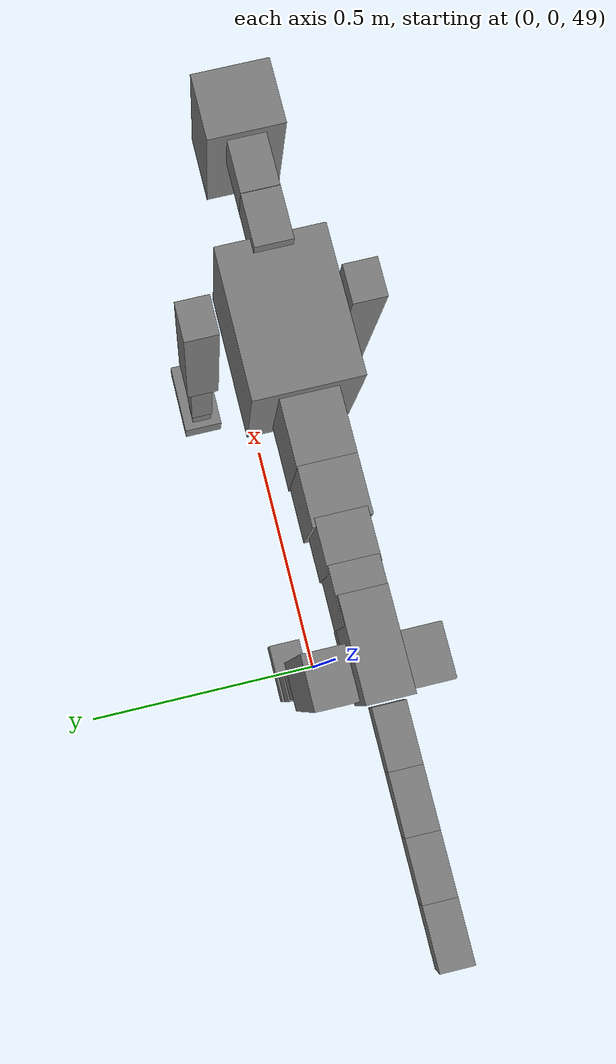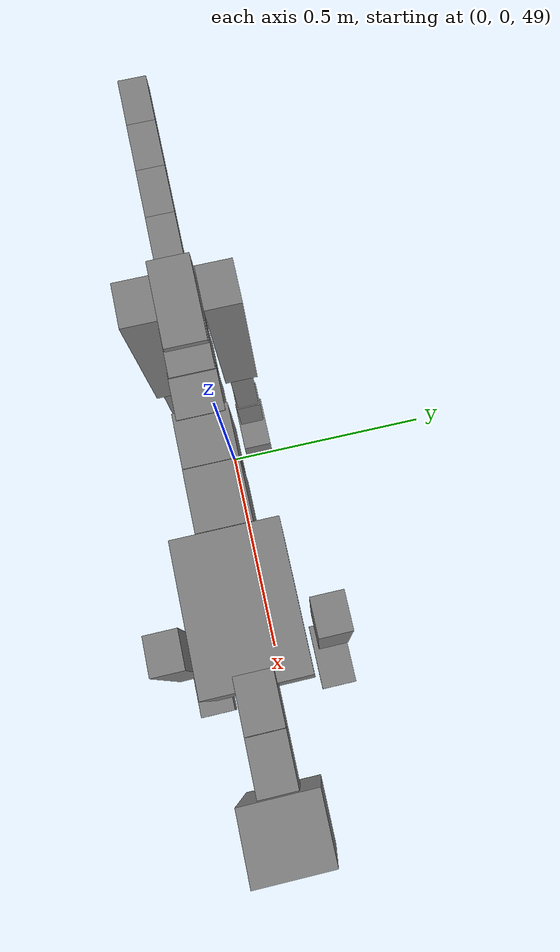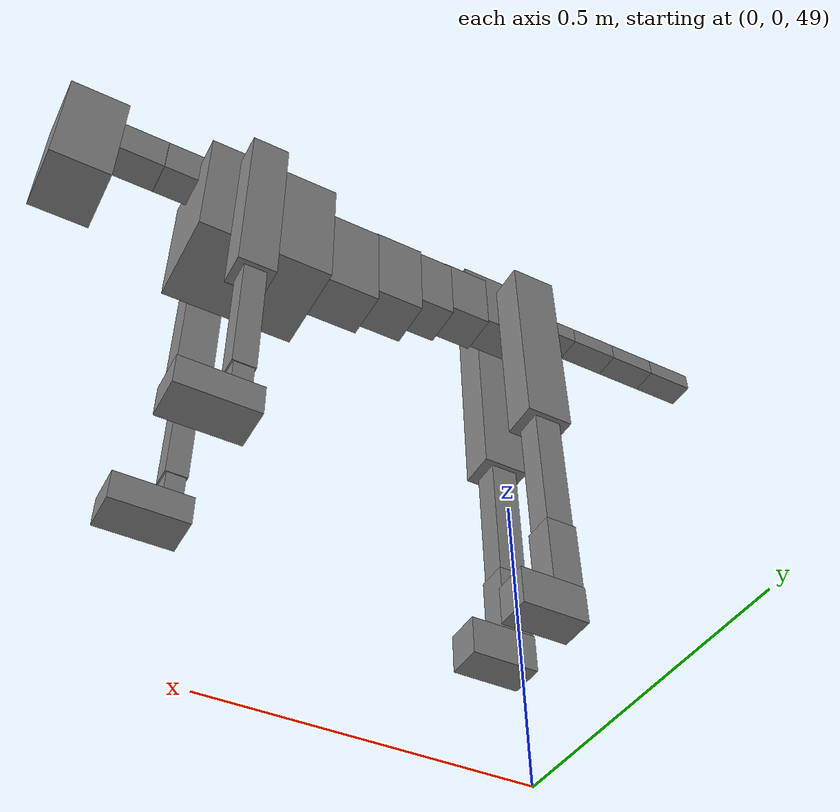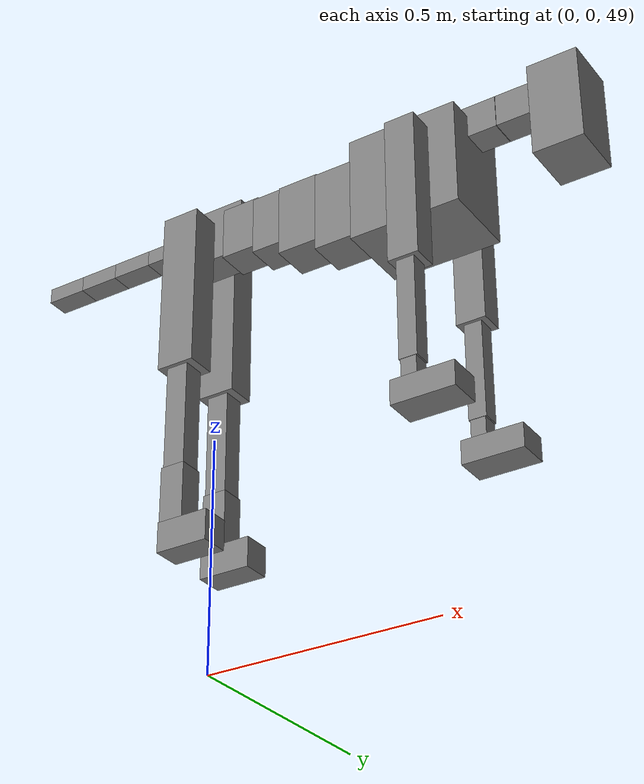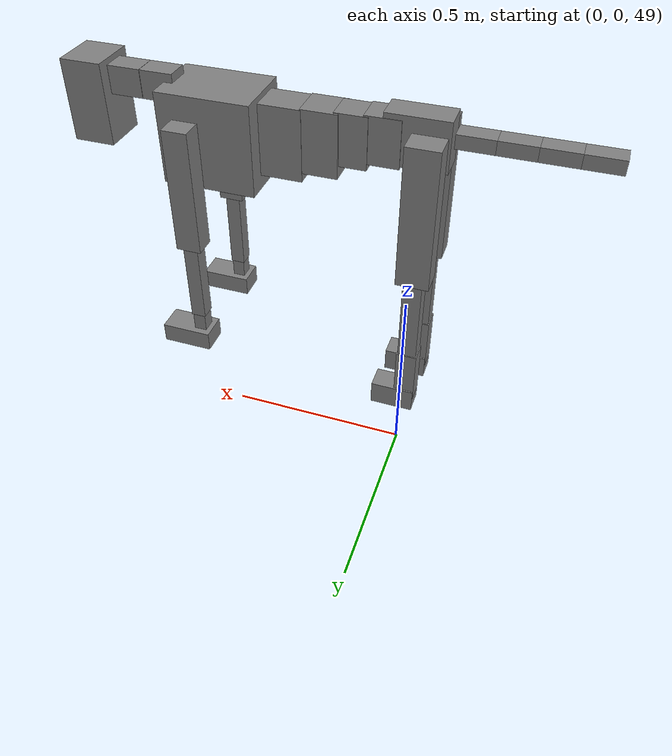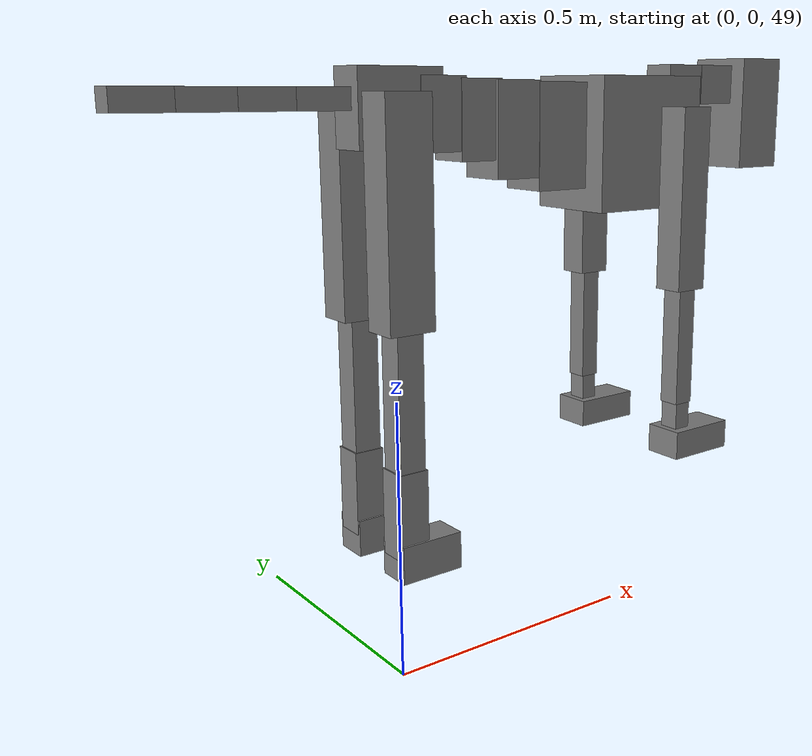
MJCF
<mujoco model="dog">

    <default>
        <joint armature="0.02" stiffness="1" damping="0.2" limited="true"/>
        <geom condim="3" friction="1 0.05 0.05" margin="0.01"/>
        <motor ctrllimited="true" ctrlrange="-1.0 1.0" forcelimited="true" gear="50"/>
    </default>

    <compiler inertiafromgeom="true" angle="radian"/>

    <option timestep="0.016" iterations="50" tolerance="1e-10" solver="Newton" jacobian="dense" cone="pyramidal"/>

    <size nconmax="20000" njmax="60000" nstack="5000000"/>
    <visual>
        <map force="0.1" zfar="30"/>
        <rgba haze="0.15 0.25 0.35 1"/>
        <quality shadowsize="2048"/>
        <global offwidth="800" offheight="800"/>
    </visual>

    <asset>
        <texture type="skybox" builtin="gradient" rgb1="0.3 0.5 0.7" rgb2="0 0 0" width="512" height="512"/>
        <texture name="texplane" type="2d" builtin="checker" rgb1=".2 .3 .4" rgb2=".1 0.15 0.2" width="512" height="512"
                 mark="cross" markrgb=".8 .8 .8"/>
        <texture name="texgeom" type="cube" builtin="flat" mark="cross" width="127" height="1278" rgb1="0.8 0.6 0.4"
                 rgb2="0.8 0.6 0.4" markrgb="1 1 1" random="0.01"/>

        <material name="matplane" reflectance="0.3" texture="texplane" texrepeat="1 1" texuniform="true"/>
        <material name="matgeom" texture="texgeom" texuniform="true" rgba="0.8 0.6 .4 1"/>
    </asset>

    <worldbody>
        <geom name="floor" pos="0 0 0" size="0 0 .25" type="plane" material="matplane" condim="3"/>

        <light directional="false" diffuse=".2 .2 .2" specular="0 0 0" pos="0 0 5" dir="0 0 -1" castshadow="false"/>
        <light mode="targetbodycom" target="torso" directional="false" diffuse=".8 .8 .8" specular="0.3 0.3 0.3"
               pos="0 0 4.0" dir="0 0 -1"/>

        <body name="root" pos="0 0 50">
            <freejoint name="root_1"/>
            <geom type="box" pos="0 0 -0.02" size="0.0774  0.0358  0.063" density="2030"/>

            <body name="spine1" pos="0.054 0 0">
                <joint name="spine1_y" axis="0 1 0" range="0 0.7" limited="true"/>
                <geom type="box" pos="0.02375 0 -0.03" size="0.04375  0.0375  0.05985" density="2030"/>

                <body name="spine2" pos="0.0612 0 0">
                    <joint name="spine2_y" axis="0 1 0" range="-0.15 0.15" limited="true"/>
                    <geom type="box" pos="0.03555  0  -0.04" size="0.04055  0.039  0.06615" density="2030"/>

                    <body name="spine3" pos="0.0730 0 0">
                        <joint name="spine3_y" axis="0 1 0" range="-0.15 0.15" limited="true"/>
                        <geom type="box" pos="0.03555  0  -0.057" size="0.04555  0.0445  0.081" density="2030"/>

                        <body name="spine4" pos="0.0780 0 0">
                            <joint name="spine4_y" axis="0 1 0" range="-0.15 0.15" limited="true"/>
                            <geom type="box" pos="0.05265  0  -0.07" size="0.05265  0.045  0.09135" density="2030"/>

                            <body name="torso" pos="0.1082 0 0">
                                <joint name="torso_y" axis="0 1 0" range="-0.15 0.15" limited="true"/>
                                <geom type="box" pos="0.11925  0  -0.085" size="0.11925  0.085  0.11745"
                                      density="2030"/>

                                <body name="neck1" pos="0.2160  0   0.0180">
                                    <joint name="neck1_y" axis="0 1 0" range="-1.2  -1" limited="true"/>
                                    <geom type="box" pos="0.0423  0  0" size="0.0423  0.03  0.036" density="2325"/>

                                    <body name="neck2" pos="0.0853  0  0">
                                        <joint name="neck2_y" axis="0 1 0" range="0.1  0" limited="true"/>
                                        <geom type="box" pos="0.0423  0  0" size="0.0423  0.03  0.036" density="2325"/>

                                        <body name="head" pos="0.0853  0  0">
                                            <joint name="head_y" axis="0 1 0" range="-0.3  -0.2" limited="true"/>
                                            <geom type="box" pos="0.0531  0  -0.055" size="0.0531  0.06  0.1044"
                                                  density="4030"/>

                                        </body>
                                    </body>
                                </body>

                                <body name="front_shoulder" pos="0.156  0   -0.0480">
                                    <joint name="front_shoulder_y" axis="0 1 0" range="-1 1.5" limited="true"/>
                                    <geom type="box" pos="0 0.13 -0.1355" size="0.0323  0.0276  0.1622" density="1158"/>
                                    <geom type="box" pos="0 -0.13 -0.1355" size="0.0323  0.0276  0.1622"
                                          density="1158"/>

                                    <body name="front_elbow" pos="0  0  -0.2711">
                                        <joint name="front_elbow_y" axis="0 1 0" range="-2 0" limited="true"/>
                                        <geom type="box" pos="0 0.13 -0.1204" size="0.0191  0.0195  0.1204"
                                              density="1081"/>
                                        <geom type="box" pos="0 -0.13 -0.1204" size="0.0191  0.0195  0.1204"
                                              density="1081"/>

                                        <body name="front_wrist" pos="0  0  -0.2407">
                                            <joint name="front_wrist_y" axis="0 1 0" range="-0.2 0" limited="true"/>
                                            <geom type="box" pos="0 0.13 -0.0316" size="0.0164  0.0182  0.0447"
                                                  density="1664"/>
                                            <geom type="box" pos="0 -0.13 -0.0316" size="0.0164  0.0182  0.0447"
                                                  density="1664"/>

                                            <body name="front_finger_end" pos="0  0  -0.0632">
                                                <joint name="front_finger_y" axis="0 1 0" range="-0.4 1"
                                                       limited="true"/>
                                                <geom type="box" pos="0.0360  0.13  -0.0109"
                                                      size="0.0660  0.0360  0.0259" density="1515"/>
                                                <geom type="box" pos="0.0360  -0.13  -0.0109"
                                                      size="0.0660  0.0360  0.0259" density="1515"/>

                                            </body>

                                        </body>
                                    </body>
                                </body>

                            </body>
                        </body>
                    </body>
                </body>
            </body>

            <body name="back_hip" pos="-0.03 0 -0.018">
                <joint name="back_hip_y" axis="0 1 0" range="-1.5 0.3" limited="true"/>
                <geom type="box" pos="0 0.07 -0.1604" size="0.0414  0.0325  0.1832" density="1154"/>
                <geom type="box" pos="0 -0.07 -0.1604" size="0.0414  0.0325  0.1832" density="1154"/>

                <body name="back_knee" pos="0  0  -0.3207">
                    <joint name="back_knee_y" axis="0 1 0" range="0 2.8" limited="true"/>
                    <geom type="box" pos="0 0.07 -0.1306" size="0.0238  0.0235  0.1462" density="1227"/>
                    <geom type="box" pos="0 -0.07 -0.1306" size="0.0238  0.0235  0.1462" density="1227"/>

                    <body name="back_ankle" pos="0  0  -0.2612">
                        <joint name="back_ankle_y" axis="0 1 0" range="-2.2 0" limited="true"/>
                        <geom type="box" pos="0 0.07 -0.0623" size="0.0265  0.0265  0.0736" density="1284"/>
                        <geom type="box" pos="0 -0.07 -0.0623" size="0.0265  0.0265  0.0736" density="1284"/>

                        <body name="back_toe_end" pos="0  0  -0.1246">
                            <joint name="back_toe_y" axis="0 1 0" range="-0.4 1" limited="true"/>
                            <geom type="box" pos="0.0307  0.07  -0.0171" size="0.0562  0.0307  0.0321" density="1515"/>
                            <geom type="box" pos="0.0307  -0.07  -0.0171" size="0.0562  0.0307  0.0321" density="1515"/>

                        </body>
                    </body>
                </body>
            </body>

            <body name="tail1" pos="-0.074 0 -0.006">
                <joint name="tail1_y" axis="0 1 0" range="-0.2 0.2" limited="true"/>
                <geom type="box" pos="-0.0536  0  0" size="0.045  0.025  0.0175" density="1587"/>

                <body name="tail2" pos="-0.09 0 0">
                    <joint name="tail2_y" axis="0 1 0" range="-0.2 0.2" limited="true"/>
                    <geom type="box" pos="-0.0536  0  0" size="0.045  0.025  0.0175" density="1587"/>

                    <body name="tail3" pos="-0.09 0 0">
                        <joint name="tail3_y" axis="0 1 0" range="-0.2 0.2" limited="true"/>
                        <geom type="box" pos="-0.0536  0  0" size="0.045  0.025  0.0175" density="1587"/>

                        <body name="tail4" pos="-0.09 0 0">
                            <joint name="tail4_y" axis="0 1 0" range="-0.2 0.2" limited="true"/>
                            <geom type="box" pos="-0.0536  0  0" size="0.045  0.025  0.0175" density="1587"/>

                        </body>
                    </body>
                </body>
            </body>
        </body>
    </worldbody>

    <actuator>
        <motor joint="spine1_y" forcerange="-150 150     "/>
        <motor joint="spine2_y" forcerange="-150 150     "/>
        <motor joint="spine3_y" forcerange="-150 150     "/>
        <motor joint="spine4_y" forcerange="-150 150     "/>
        <motor joint="torso_y" forcerange="-150 150     "/>
        <motor joint="neck1_y" forcerange="-100 100       "/>
        <motor joint="neck2_y" forcerange="-100 100       "/>
        <motor joint="head_y" forcerange="-150 150       "/>
        <motor joint="front_shoulder_y" forcerange="-144.23 139.85"/>
        <motor joint="front_elbow_y" forcerange="-137.87 104.20"/>
        <motor joint="front_wrist_y" forcerange="-76.17 69.76"/>
        <motor joint="front_finger_y" forcerange="-95.50 56.41"/>
        <motor joint="back_hip_y" forcerange="-294.21 338.47"/>
        <motor joint="back_knee_y" forcerange="-231.44 310.00"/>
        <motor joint="back_angle_y" forcerange="-133.08 191.20"/>
        <motor joint="back_toe_y" forcerange="-128.28 36.95"/>
        <motor joint="tail1_y" forcerange="-50 50     "/>
        <motor joint="tail2_y" forcerange="-50 50     "/>
        <motor joint="tail3_y" forcerange="-50 50     "/>
        <motor joint="tail4_y" forcerange="-50 50     "/>
    </actuator>
</mujoco>
